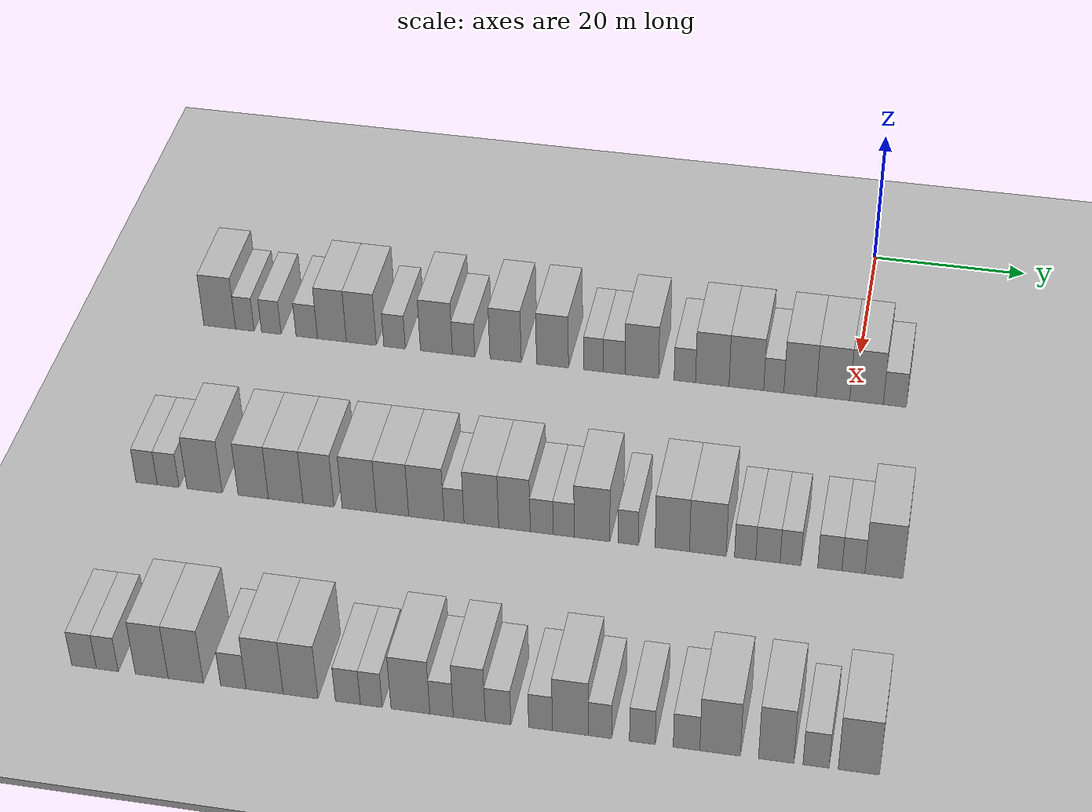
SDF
<sdf version="1.6">
 <world name="default">
  <include><name>ground_plane_1</name><uri>model://HANNAS_ground_plane</uri></include>
  <include>
   <name>ground_plane_2</name>
   <uri>model://HANNAS_ground_plane</uri>
   <pose>100 0 0  0 0 0</pose>
  </include>
  <model name="building_46">
   <static>1</static>
   <pose>25.0000 -82.9664 0 0.000000 0.000000 0.000000</pose>
   <link name="link">
    <pose>0 0 4.50 0 0 0</pose>
    <collision name="collision"><geometry><box><size>10.0000 4.2973 9.0000</size></box></geometry></collision>
    <visual name="visual">
     <cast_shadows>0</cast_shadows>
     <geometry><box><size>10.0000 4.2973 9.0000</size></box></geometry>
     <material>
      <script>
       <uri>model://HANNAS_wall/materials/scripts</uri>
       <uri>model://HANNAS_wall/materials/textures</uri>
       <name>vrc/HANNAS_wall</name>
      </script>
     </material>
    </visual>
   </link>
  </model>
  <model name="building_47">
   <static>1</static>
   <pose>25.0000 -79.5691 0 0.000000 0.000000 0.000000</pose>
   <link name="link">
    <pose>0 0 3.00 0 0 0</pose>
    <collision name="collision"><geometry><box><size>10.0000 2.4973 6.0000</size></box></geometry></collision>
    <visual name="visual">
     <cast_shadows>0</cast_shadows>
     <geometry><box><size>10.0000 2.4973 6.0000</size></box></geometry>
     <material>
      <script>
       <uri>model://HANNAS_wall/materials/scripts</uri>
       <uri>model://HANNAS_wall/materials/textures</uri>
       <name>vrc/HANNAS_wall</name>
      </script>
     </material>
    </visual>
   </link>
  </model>
  <model name="building_48">
   <static>1</static>
   <pose>25.0000 -75.9990 0 0.000000 0.000000 0.000000</pose>
   <link name="link">
    <pose>0 0 3.00 0 0 0</pose>
    <collision name="collision"><geometry><box><size>10.0000 2.6429 6.0000</size></box></geometry></collision>
    <visual name="visual">
     <cast_shadows>0</cast_shadows>
     <geometry><box><size>10.0000 2.6429 6.0000</size></box></geometry>
     <material>
      <script>
       <uri>model://HANNAS_wall/materials/scripts</uri>
       <uri>model://HANNAS_wall/materials/textures</uri>
       <name>vrc/HANNAS_wall</name>
      </script>
     </material>
    </visual>
   </link>
  </model>
  <model name="building_49">
   <static>1</static>
   <pose>25.0000 -71.2366 0 0.000000 0.000000 0.000000</pose>
   <link name="link">
    <pose>0 0 3.00 0 0 0</pose>
    <collision name="collision"><geometry><box><size>10.0000 2.8819 6.0000</size></box></geometry></collision>
    <visual name="visual">
     <cast_shadows>0</cast_shadows>
     <geometry><box><size>10.0000 2.8819 6.0000</size></box></geometry>
     <material>
      <script>
       <uri>model://HANNAS_wall/materials/scripts</uri>
       <uri>model://HANNAS_wall/materials/textures</uri>
       <name>vrc/HANNAS_wall</name>
      </script>
     </material>
    </visual>
   </link>
  </model>
  <model name="building_50">
   <static>1</static>
   <pose>25.0000 -67.8626 0 0.000000 0.000000 0.000000</pose>
   <link name="link">
    <pose>0 0 4.50 0 0 0</pose>
    <collision name="collision"><geometry><box><size>10.0000 3.8659 9.0000</size></box></geometry></collision>
    <visual name="visual">
     <cast_shadows>0</cast_shadows>
     <geometry><box><size>10.0000 3.8659 9.0000</size></box></geometry>
     <material>
      <script>
       <uri>model://HANNAS_wall/materials/scripts</uri>
       <uri>model://HANNAS_wall/materials/textures</uri>
       <name>vrc/HANNAS_wall</name>
      </script>
     </material>
    </visual>
   </link>
  </model>
  <model name="building_51">
   <static>1</static>
   <pose>25.0000 -63.9339 0 0.000000 0.000000 0.000000</pose>
   <link name="link">
    <pose>0 0 4.50 0 0 0</pose>
    <collision name="collision"><geometry><box><size>10.0000 3.9915 9.0000</size></box></geometry></collision>
    <visual name="visual">
     <cast_shadows>0</cast_shadows>
     <geometry><box><size>10.0000 3.9915 9.0000</size></box></geometry>
     <material>
      <script>
       <uri>model://HANNAS_wall/materials/scripts</uri>
       <uri>model://HANNAS_wall/materials/textures</uri>
       <name>vrc/HANNAS_wall</name>
      </script>
     </material>
    </visual>
   </link>
  </model>
  <model name="building_52">
   <static>1</static>
   <pose>25.0000 -59.5089 0 0.000000 0.000000 0.000000</pose>
   <link name="link">
    <pose>0 0 3.00 0 0 0</pose>
    <collision name="collision"><geometry><box><size>10.0000 2.8585 6.0000</size></box></geometry></collision>
    <visual name="visual">
     <cast_shadows>0</cast_shadows>
     <geometry><box><size>10.0000 2.8585 6.0000</size></box></geometry>
     <material>
      <script>
       <uri>model://HANNAS_wall/materials/scripts</uri>
       <uri>model://HANNAS_wall/materials/textures</uri>
       <name>vrc/HANNAS_wall</name>
      </script>
     </material>
    </visual>
   </link>
  </model>
  <model name="building_53">
   <static>1</static>
   <pose>25.0000 -53.9598 0 0.000000 0.000000 0.000000</pose>
   <link name="link">
    <pose>0 0 4.50 0 0 0</pose>
    <collision name="collision"><geometry><box><size>10.0000 4.2397 9.0000</size></box></geometry></collision>
    <visual name="visual">
     <cast_shadows>0</cast_shadows>
     <geometry><box><size>10.0000 4.2397 9.0000</size></box></geometry>
     <material>
      <script>
       <uri>model://HANNAS_wall/materials/scripts</uri>
       <uri>model://HANNAS_wall/materials/textures</uri>
       <name>vrc/HANNAS_wall</name>
      </script>
     </material>
    </visual>
   </link>
  </model>
  <model name="building_54">
   <static>1</static>
   <pose>25.0000 -50.3674 0 0.000000 0.000000 0.000000</pose>
   <link name="link">
    <pose>0 0 3.00 0 0 0</pose>
    <collision name="collision"><geometry><box><size>10.0000 2.9451 6.0000</size></box></geometry></collision>
    <visual name="visual">
     <cast_shadows>0</cast_shadows>
     <geometry><box><size>10.0000 2.9451 6.0000</size></box></geometry>
     <material>
      <script>
       <uri>model://HANNAS_wall/materials/scripts</uri>
       <uri>model://HANNAS_wall/materials/textures</uri>
       <name>vrc/HANNAS_wall</name>
      </script>
     </material>
    </visual>
   </link>
  </model>
  <model name="building_55">
   <static>1</static>
   <pose>25.0000 -44.8354 0 0.000000 0.000000 0.000000</pose>
   <link name="link">
    <pose>0 0 4.50 0 0 0</pose>
    <collision name="collision"><geometry><box><size>10.0000 4.1189 9.0000</size></box></geometry></collision>
    <visual name="visual">
     <cast_shadows>0</cast_shadows>
     <geometry><box><size>10.0000 4.1189 9.0000</size></box></geometry>
     <material>
      <script>
       <uri>model://HANNAS_wall/materials/scripts</uri>
       <uri>model://HANNAS_wall/materials/textures</uri>
       <name>vrc/HANNAS_wall</name>
      </script>
     </material>
    </visual>
   </link>
  </model>
  <model name="building_56">
   <static>1</static>
   <pose>25.0000 -38.6920 0 0.000000 0.000000 0.000000</pose>
   <link name="link">
    <pose>0 0 4.50 0 0 0</pose>
    <collision name="collision"><geometry><box><size>10.0000 4.1679 9.0000</size></box></geometry></collision>
    <visual name="visual">
     <cast_shadows>0</cast_shadows>
     <geometry><box><size>10.0000 4.1679 9.0000</size></box></geometry>
     <material>
      <script>
       <uri>model://HANNAS_wall/materials/scripts</uri>
       <uri>model://HANNAS_wall/materials/textures</uri>
       <name>vrc/HANNAS_wall</name>
      </script>
     </material>
    </visual>
   </link>
  </model>
  <model name="building_57">
   <static>1</static>
   <pose>25.0000 -33.3581 0 0.000000 0.000000 0.000000</pose>
   <link name="link">
    <pose>0 0 3.00 0 0 0</pose>
    <collision name="collision"><geometry><box><size>10.0000 2.4999 6.0000</size></box></geometry></collision>
    <visual name="visual">
     <cast_shadows>0</cast_shadows>
     <geometry><box><size>10.0000 2.4999 6.0000</size></box></geometry>
     <material>
      <script>
       <uri>model://HANNAS_wall/materials/scripts</uri>
       <uri>model://HANNAS_wall/materials/textures</uri>
       <name>vrc/HANNAS_wall</name>
      </script>
     </material>
    </visual>
   </link>
  </model>
  <model name="building_58">
   <static>1</static>
   <pose>25.0000 -30.6854 0 0.000000 0.000000 0.000000</pose>
   <link name="link">
    <pose>0 0 3.00 0 0 0</pose>
    <collision name="collision"><geometry><box><size>10.0000 2.8455 6.0000</size></box></geometry></collision>
    <visual name="visual">
     <cast_shadows>0</cast_shadows>
     <geometry><box><size>10.0000 2.8455 6.0000</size></box></geometry>
     <material>
      <script>
       <uri>model://HANNAS_wall/materials/scripts</uri>
       <uri>model://HANNAS_wall/materials/textures</uri>
       <name>vrc/HANNAS_wall</name>
      </script>
     </material>
    </visual>
   </link>
  </model>
  <model name="building_59">
   <static>1</static>
   <pose>25.0000 -27.0819 0 0.000000 0.000000 0.000000</pose>
   <link name="link">
    <pose>0 0 4.50 0 0 0</pose>
    <collision name="collision"><geometry><box><size>10.0000 4.3614 9.0000</size></box></geometry></collision>
    <visual name="visual">
     <cast_shadows>0</cast_shadows>
     <geometry><box><size>10.0000 4.3614 9.0000</size></box></geometry>
     <material>
      <script>
       <uri>model://HANNAS_wall/materials/scripts</uri>
       <uri>model://HANNAS_wall/materials/textures</uri>
       <name>vrc/HANNAS_wall</name>
      </script>
     </material>
    </visual>
   </link>
  </model>
  <model name="building_60">
   <static>1</static>
   <pose>25.0000 -21.5233 0 0.000000 0.000000 0.000000</pose>
   <link name="link">
    <pose>0 0 3.00 0 0 0</pose>
    <collision name="collision"><geometry><box><size>10.0000 2.7559 6.0000</size></box></geometry></collision>
    <visual name="visual">
     <cast_shadows>0</cast_shadows>
     <geometry><box><size>10.0000 2.7559 6.0000</size></box></geometry>
     <material>
      <script>
       <uri>model://HANNAS_wall/materials/scripts</uri>
       <uri>model://HANNAS_wall/materials/textures</uri>
       <name>vrc/HANNAS_wall</name>
      </script>
     </material>
    </visual>
   </link>
  </model>
  <model name="building_61">
   <static>1</static>
   <pose>25.0000 -17.9922 0 0.000000 0.000000 0.000000</pose>
   <link name="link">
    <pose>0 0 4.50 0 0 0</pose>
    <collision name="collision"><geometry><box><size>10.0000 4.3062 9.0000</size></box></geometry></collision>
    <visual name="visual">
     <cast_shadows>0</cast_shadows>
     <geometry><box><size>10.0000 4.3062 9.0000</size></box></geometry>
     <material>
      <script>
       <uri>model://HANNAS_wall/materials/scripts</uri>
       <uri>model://HANNAS_wall/materials/textures</uri>
       <name>vrc/HANNAS_wall</name>
      </script>
     </material>
    </visual>
   </link>
  </model>
  <model name="building_62">
   <static>1</static>
   <pose>25.0000 -13.6157 0 0.000000 0.000000 0.000000</pose>
   <link name="link">
    <pose>0 0 4.50 0 0 0</pose>
    <collision name="collision"><geometry><box><size>10.0000 4.4468 9.0000</size></box></geometry></collision>
    <visual name="visual">
     <cast_shadows>0</cast_shadows>
     <geometry><box><size>10.0000 4.4468 9.0000</size></box></geometry>
     <material>
      <script>
       <uri>model://HANNAS_wall/materials/scripts</uri>
       <uri>model://HANNAS_wall/materials/textures</uri>
       <name>vrc/HANNAS_wall</name>
      </script>
     </material>
    </visual>
   </link>
  </model>
  <model name="building_63">
   <static>1</static>
   <pose>25.0000 -10.1081 0 0.000000 0.000000 0.000000</pose>
   <link name="link">
    <pose>0 0 3.00 0 0 0</pose>
    <collision name="collision"><geometry><box><size>10.0000 2.5683 6.0000</size></box></geometry></collision>
    <visual name="visual">
     <cast_shadows>0</cast_shadows>
     <geometry><box><size>10.0000 2.5683 6.0000</size></box></geometry>
     <material>
      <script>
       <uri>model://HANNAS_wall/materials/scripts</uri>
       <uri>model://HANNAS_wall/materials/textures</uri>
       <name>vrc/HANNAS_wall</name>
      </script>
     </material>
    </visual>
   </link>
  </model>
  <model name="building_64">
   <static>1</static>
   <pose>25.0000 -6.7647 0 0.000000 0.000000 0.000000</pose>
   <link name="link">
    <pose>0 0 4.50 0 0 0</pose>
    <collision name="collision"><geometry><box><size>10.0000 4.1185 9.0000</size></box></geometry></collision>
    <visual name="visual">
     <cast_shadows>0</cast_shadows>
     <geometry><box><size>10.0000 4.1185 9.0000</size></box></geometry>
     <material>
      <script>
       <uri>model://HANNAS_wall/materials/scripts</uri>
       <uri>model://HANNAS_wall/materials/textures</uri>
       <name>vrc/HANNAS_wall</name>
      </script>
     </material>
    </visual>
   </link>
  </model>
  <model name="building_65">
   <static>1</static>
   <pose>25.0000 -2.5718 0 0.000000 0.000000 0.000000</pose>
   <link name="link">
    <pose>0 0 4.50 0 0 0</pose>
    <collision name="collision"><geometry><box><size>10.0000 4.2673 9.0000</size></box></geometry></collision>
    <visual name="visual">
     <cast_shadows>0</cast_shadows>
     <geometry><box><size>10.0000 4.2673 9.0000</size></box></geometry>
     <material>
      <script>
       <uri>model://HANNAS_wall/materials/scripts</uri>
       <uri>model://HANNAS_wall/materials/textures</uri>
       <name>vrc/HANNAS_wall</name>
      </script>
     </material>
    </visual>
   </link>
  </model>
  <model name="building_66">
   <static>1</static>
   <pose>25.0000 1.6884 0 0.000000 0.000000 0.000000</pose>
   <link name="link">
    <pose>0 0 4.50 0 0 0</pose>
    <collision name="collision"><geometry><box><size>10.0000 4.2529 9.0000</size></box></geometry></collision>
    <visual name="visual">
     <cast_shadows>0</cast_shadows>
     <geometry><box><size>10.0000 4.2529 9.0000</size></box></geometry>
     <material>
      <script>
       <uri>model://HANNAS_wall/materials/scripts</uri>
       <uri>model://HANNAS_wall/materials/textures</uri>
       <name>vrc/HANNAS_wall</name>
      </script>
     </material>
    </visual>
   </link>
  </model>
  <model name="building_67">
   <static>1</static>
   <pose>25.0000 5.2637 0 0.000000 0.000000 0.000000</pose>
   <link name="link">
    <pose>0 0 3.00 0 0 0</pose>
    <collision name="collision"><geometry><box><size>10.0000 2.8977 6.0000</size></box></geometry></collision>
    <visual name="visual">
     <cast_shadows>0</cast_shadows>
     <geometry><box><size>10.0000 2.8977 6.0000</size></box></geometry>
     <material>
      <script>
       <uri>model://HANNAS_wall/materials/scripts</uri>
       <uri>model://HANNAS_wall/materials/textures</uri>
       <name>vrc/HANNAS_wall</name>
      </script>
     </material>
    </visual>
   </link>
  </model>
  <model name="building_185">
   <static>1</static>
   <pose>55.0000 -83.3040 0 0.000000 0.000000 0.000000</pose>
   <link name="link">
    <pose>0 0 3.00 0 0 0</pose>
    <collision name="collision"><geometry><box><size>10.0000 2.6878 6.0000</size></box></geometry></collision>
    <visual name="visual">
     <cast_shadows>0</cast_shadows>
     <geometry><box><size>10.0000 2.6878 6.0000</size></box></geometry>
     <material>
      <script>
       <uri>model://HANNAS_wall/materials/scripts</uri>
       <uri>model://HANNAS_wall/materials/textures</uri>
       <name>vrc/HANNAS_wall</name>
      </script>
     </material>
    </visual>
   </link>
  </model>
  <model name="building_186">
   <static>1</static>
   <pose>55.0000 -80.5756 0 0.000000 0.000000 0.000000</pose>
   <link name="link">
    <pose>0 0 3.00 0 0 0</pose>
    <collision name="collision"><geometry><box><size>10.0000 2.7692 6.0000</size></box></geometry></collision>
    <visual name="visual">
     <cast_shadows>0</cast_shadows>
     <geometry><box><size>10.0000 2.7692 6.0000</size></box></geometry>
     <material>
      <script>
       <uri>model://HANNAS_wall/materials/scripts</uri>
       <uri>model://HANNAS_wall/materials/textures</uri>
       <name>vrc/HANNAS_wall</name>
      </script>
     </material>
    </visual>
   </link>
  </model>
  <model name="building_187">
   <static>1</static>
   <pose>55.0000 -75.9728 0 0.000000 0.000000 0.000000</pose>
   <link name="link">
    <pose>0 0 4.50 0 0 0</pose>
    <collision name="collision"><geometry><box><size>10.0000 4.4364 9.0000</size></box></geometry></collision>
    <visual name="visual">
     <cast_shadows>0</cast_shadows>
     <geometry><box><size>10.0000 4.4364 9.0000</size></box></geometry>
     <material>
      <script>
       <uri>model://HANNAS_wall/materials/scripts</uri>
       <uri>model://HANNAS_wall/materials/textures</uri>
       <name>vrc/HANNAS_wall</name>
      </script>
     </material>
    </visual>
   </link>
  </model>
  <model name="building_188">
   <static>1</static>
   <pose>55.0000 -69.8494 0 0.000000 0.000000 0.000000</pose>
   <link name="link">
    <pose>0 0 4.50 0 0 0</pose>
    <collision name="collision"><geometry><box><size>10.0000 3.8103 9.0000</size></box></geometry></collision>
    <visual name="visual">
     <cast_shadows>0</cast_shadows>
     <geometry><box><size>10.0000 3.8103 9.0000</size></box></geometry>
     <material>
      <script>
       <uri>model://HANNAS_wall/materials/scripts</uri>
       <uri>model://HANNAS_wall/materials/textures</uri>
       <name>vrc/HANNAS_wall</name>
      </script>
     </material>
    </visual>
   </link>
  </model>
  <model name="building_189">
   <static>1</static>
   <pose>55.0000 -65.7828 0 0.000000 0.000000 0.000000</pose>
   <link name="link">
    <pose>0 0 4.50 0 0 0</pose>
    <collision name="collision"><geometry><box><size>10.0000 4.3230 9.0000</size></box></geometry></collision>
    <visual name="visual">
     <cast_shadows>0</cast_shadows>
     <geometry><box><size>10.0000 4.3230 9.0000</size></box></geometry>
     <material>
      <script>
       <uri>model://HANNAS_wall/materials/scripts</uri>
       <uri>model://HANNAS_wall/materials/textures</uri>
       <name>vrc/HANNAS_wall</name>
      </script>
     </material>
    </visual>
   </link>
  </model>
  <model name="building_190">
   <static>1</static>
   <pose>55.0000 -61.6930 0 0.000000 0.000000 0.000000</pose>
   <link name="link">
    <pose>0 0 4.50 0 0 0</pose>
    <collision name="collision"><geometry><box><size>10.0000 3.8566 9.0000</size></box></geometry></collision>
    <visual name="visual">
     <cast_shadows>0</cast_shadows>
     <geometry><box><size>10.0000 3.8566 9.0000</size></box></geometry>
     <material>
      <script>
       <uri>model://HANNAS_wall/materials/scripts</uri>
       <uri>model://HANNAS_wall/materials/textures</uri>
       <name>vrc/HANNAS_wall</name>
      </script>
     </material>
    </visual>
   </link>
  </model>
  <model name="building_191">
   <static>1</static>
   <pose>55.0000 -56.6436 0 0.000000 0.000000 0.000000</pose>
   <link name="link">
    <pose>0 0 4.50 0 0 0</pose>
    <collision name="collision"><geometry><box><size>10.0000 4.2421 9.0000</size></box></geometry></collision>
    <visual name="visual">
     <cast_shadows>0</cast_shadows>
     <geometry><box><size>10.0000 4.2421 9.0000</size></box></geometry>
     <material>
      <script>
       <uri>model://HANNAS_wall/materials/scripts</uri>
       <uri>model://HANNAS_wall/materials/textures</uri>
       <name>vrc/HANNAS_wall</name>
      </script>
     </material>
    </visual>
   </link>
  </model>
  <model name="building_192">
   <static>1</static>
   <pose>55.0000 -52.5233 0 0.000000 0.000000 0.000000</pose>
   <link name="link">
    <pose>0 0 4.50 0 0 0</pose>
    <collision name="collision"><geometry><box><size>10.0000 3.9985 9.0000</size></box></geometry></collision>
    <visual name="visual">
     <cast_shadows>0</cast_shadows>
     <geometry><box><size>10.0000 3.9985 9.0000</size></box></geometry>
     <material>
      <script>
       <uri>model://HANNAS_wall/materials/scripts</uri>
       <uri>model://HANNAS_wall/materials/textures</uri>
       <name>vrc/HANNAS_wall</name>
      </script>
     </material>
    </visual>
   </link>
  </model>
  <model name="building_193">
   <static>1</static>
   <pose>55.0000 -48.3417 0 0.000000 0.000000 0.000000</pose>
   <link name="link">
    <pose>0 0 4.50 0 0 0</pose>
    <collision name="collision"><geometry><box><size>10.0000 4.3648 9.0000</size></box></geometry></collision>
    <visual name="visual">
     <cast_shadows>0</cast_shadows>
     <geometry><box><size>10.0000 4.3648 9.0000</size></box></geometry>
     <material>
      <script>
       <uri>model://HANNAS_wall/materials/scripts</uri>
       <uri>model://HANNAS_wall/materials/textures</uri>
       <name>vrc/HANNAS_wall</name>
      </script>
     </material>
    </visual>
   </link>
  </model>
  <model name="building_194">
   <static>1</static>
   <pose>55.0000 -44.9358 0 0.000000 0.000000 0.000000</pose>
   <link name="link">
    <pose>0 0 3.00 0 0 0</pose>
    <collision name="collision"><geometry><box><size>10.0000 2.4470 6.0000</size></box></geometry></collision>
    <visual name="visual">
     <cast_shadows>0</cast_shadows>
     <geometry><box><size>10.0000 2.4470 6.0000</size></box></geometry>
     <material>
      <script>
       <uri>model://HANNAS_wall/materials/scripts</uri>
       <uri>model://HANNAS_wall/materials/textures</uri>
       <name>vrc/HANNAS_wall</name>
      </script>
     </material>
    </visual>
   </link>
  </model>
  <model name="building_195">
   <static>1</static>
   <pose>55.0000 -41.5872 0 0.000000 0.000000 0.000000</pose>
   <link name="link">
    <pose>0 0 4.50 0 0 0</pose>
    <collision name="collision"><geometry><box><size>10.0000 4.2503 9.0000</size></box></geometry></collision>
    <visual name="visual">
     <cast_shadows>0</cast_shadows>
     <geometry><box><size>10.0000 4.2503 9.0000</size></box></geometry>
     <material>
      <script>
       <uri>model://HANNAS_wall/materials/scripts</uri>
       <uri>model://HANNAS_wall/materials/textures</uri>
       <name>vrc/HANNAS_wall</name>
      </script>
     </material>
    </visual>
   </link>
  </model>
  <model name="building_196">
   <static>1</static>
   <pose>55.0000 -37.5357 0 0.000000 0.000000 0.000000</pose>
   <link name="link">
    <pose>0 0 4.50 0 0 0</pose>
    <collision name="collision"><geometry><box><size>10.0000 3.8528 9.0000</size></box></geometry></collision>
    <visual name="visual">
     <cast_shadows>0</cast_shadows>
     <geometry><box><size>10.0000 3.8528 9.0000</size></box></geometry>
     <material>
      <script>
       <uri>model://HANNAS_wall/materials/scripts</uri>
       <uri>model://HANNAS_wall/materials/textures</uri>
       <name>vrc/HANNAS_wall</name>
      </script>
     </material>
    </visual>
   </link>
  </model>
  <model name="building_197">
   <static>1</static>
   <pose>55.0000 -34.2203 0 0.000000 0.000000 0.000000</pose>
   <link name="link">
    <pose>0 0 3.00 0 0 0</pose>
    <collision name="collision"><geometry><box><size>10.0000 2.7779 6.0000</size></box></geometry></collision>
    <visual name="visual">
     <cast_shadows>0</cast_shadows>
     <geometry><box><size>10.0000 2.7779 6.0000</size></box></geometry>
     <material>
      <script>
       <uri>model://HANNAS_wall/materials/scripts</uri>
       <uri>model://HANNAS_wall/materials/textures</uri>
       <name>vrc/HANNAS_wall</name>
      </script>
     </material>
    </visual>
   </link>
  </model>
  <model name="building_198">
   <static>1</static>
   <pose>55.0000 -31.5542 0 0.000000 0.000000 0.000000</pose>
   <link name="link">
    <pose>0 0 3.00 0 0 0</pose>
    <collision name="collision"><geometry><box><size>10.0000 2.5544 6.0000</size></box></geometry></collision>
    <visual name="visual">
     <cast_shadows>0</cast_shadows>
     <geometry><box><size>10.0000 2.5544 6.0000</size></box></geometry>
     <material>
      <script>
       <uri>model://HANNAS_wall/materials/scripts</uri>
       <uri>model://HANNAS_wall/materials/textures</uri>
       <name>vrc/HANNAS_wall</name>
      </script>
     </material>
    </visual>
   </link>
  </model>
  <model name="building_199">
   <static>1</static>
   <pose>55.0000 -28.1221 0 0.000000 0.000000 0.000000</pose>
   <link name="link">
    <pose>0 0 4.50 0 0 0</pose>
    <collision name="collision"><geometry><box><size>10.0000 4.3098 9.0000</size></box></geometry></collision>
    <visual name="visual">
     <cast_shadows>0</cast_shadows>
     <geometry><box><size>10.0000 4.3098 9.0000</size></box></geometry>
     <material>
      <script>
       <uri>model://HANNAS_wall/materials/scripts</uri>
       <uri>model://HANNAS_wall/materials/textures</uri>
       <name>vrc/HANNAS_wall</name>
      </script>
     </material>
    </visual>
   </link>
  </model>
  <model name="building_200">
   <static>1</static>
   <pose>55.0000 -23.7427 0 0.000000 0.000000 0.000000</pose>
   <link name="link">
    <pose>0 0 3.00 0 0 0</pose>
    <collision name="collision"><geometry><box><size>10.0000 2.4491 6.0000</size></box></geometry></collision>
    <visual name="visual">
     <cast_shadows>0</cast_shadows>
     <geometry><box><size>10.0000 2.4491 6.0000</size></box></geometry>
     <material>
      <script>
       <uri>model://HANNAS_wall/materials/scripts</uri>
       <uri>model://HANNAS_wall/materials/textures</uri>
       <name>vrc/HANNAS_wall</name>
      </script>
     </material>
    </visual>
   </link>
  </model>
  <model name="building_201">
   <static>1</static>
   <pose>55.0000 -18.4586 0 0.000000 0.000000 0.000000</pose>
   <link name="link">
    <pose>0 0 4.50 0 0 0</pose>
    <collision name="collision"><geometry><box><size>10.0000 4.1191 9.0000</size></box></geometry></collision>
    <visual name="visual">
     <cast_shadows>0</cast_shadows>
     <geometry><box><size>10.0000 4.1191 9.0000</size></box></geometry>
     <material>
      <script>
       <uri>model://HANNAS_wall/materials/scripts</uri>
       <uri>model://HANNAS_wall/materials/textures</uri>
       <name>vrc/HANNAS_wall</name>
      </script>
     </material>
    </visual>
   </link>
  </model>
  <model name="building_202">
   <static>1</static>
   <pose>55.0000 -14.2052 0 0.000000 0.000000 0.000000</pose>
   <link name="link">
    <pose>0 0 4.50 0 0 0</pose>
    <collision name="collision"><geometry><box><size>10.0000 4.3877 9.0000</size></box></geometry></collision>
    <visual name="visual">
     <cast_shadows>0</cast_shadows>
     <geometry><box><size>10.0000 4.3877 9.0000</size></box></geometry>
     <material>
      <script>
       <uri>model://HANNAS_wall/materials/scripts</uri>
       <uri>model://HANNAS_wall/materials/textures</uri>
       <name>vrc/HANNAS_wall</name>
      </script>
     </material>
    </visual>
   </link>
  </model>
  <model name="building_203">
   <static>1</static>
   <pose>55.0000 -9.7453 0 0.000000 0.000000 0.000000</pose>
   <link name="link">
    <pose>0 0 3.00 0 0 0</pose>
    <collision name="collision"><geometry><box><size>10.0000 2.5322 6.0000</size></box></geometry></collision>
    <visual name="visual">
     <cast_shadows>0</cast_shadows>
     <geometry><box><size>10.0000 2.5322 6.0000</size></box></geometry>
     <material>
      <script>
       <uri>model://HANNAS_wall/materials/scripts</uri>
       <uri>model://HANNAS_wall/materials/textures</uri>
       <name>vrc/HANNAS_wall</name>
      </script>
     </material>
    </visual>
   </link>
  </model>
  <model name="building_204">
   <static>1</static>
   <pose>55.0000 -7.0385 0 0.000000 0.000000 0.000000</pose>
   <link name="link">
    <pose>0 0 3.00 0 0 0</pose>
    <collision name="collision"><geometry><box><size>10.0000 2.8815 6.0000</size></box></geometry></collision>
    <visual name="visual">
     <cast_shadows>0</cast_shadows>
     <geometry><box><size>10.0000 2.8815 6.0000</size></box></geometry>
     <material>
      <script>
       <uri>model://HANNAS_wall/materials/scripts</uri>
       <uri>model://HANNAS_wall/materials/textures</uri>
       <name>vrc/HANNAS_wall</name>
      </script>
     </material>
    </visual>
   </link>
  </model>
  <model name="building_205">
   <static>1</static>
   <pose>55.0000 -4.3658 0 0.000000 0.000000 0.000000</pose>
   <link name="link">
    <pose>0 0 3.00 0 0 0</pose>
    <collision name="collision"><geometry><box><size>10.0000 2.4639 6.0000</size></box></geometry></collision>
    <visual name="visual">
     <cast_shadows>0</cast_shadows>
     <geometry><box><size>10.0000 2.4639 6.0000</size></box></geometry>
     <material>
      <script>
       <uri>model://HANNAS_wall/materials/scripts</uri>
       <uri>model://HANNAS_wall/materials/textures</uri>
       <name>vrc/HANNAS_wall</name>
      </script>
     </material>
    </visual>
   </link>
  </model>
  <model name="building_206">
   <static>1</static>
   <pose>55.0000 0.2914 0 0.000000 0.000000 0.000000</pose>
   <link name="link">
    <pose>0 0 3.00 0 0 0</pose>
    <collision name="collision"><geometry><box><size>10.0000 2.8505 6.0000</size></box></geometry></collision>
    <visual name="visual">
     <cast_shadows>0</cast_shadows>
     <geometry><box><size>10.0000 2.8505 6.0000</size></box></geometry>
     <material>
      <script>
       <uri>model://HANNAS_wall/materials/scripts</uri>
       <uri>model://HANNAS_wall/materials/textures</uri>
       <name>vrc/HANNAS_wall</name>
      </script>
     </material>
    </visual>
   </link>
  </model>
  <model name="building_207">
   <static>1</static>
   <pose>55.0000 3.0710 0 0.000000 0.000000 0.000000</pose>
   <link name="link">
    <pose>0 0 3.00 0 0 0</pose>
    <collision name="collision"><geometry><box><size>10.0000 2.7087 6.0000</size></box></geometry></collision>
    <visual name="visual">
     <cast_shadows>0</cast_shadows>
     <geometry><box><size>10.0000 2.7087 6.0000</size></box></geometry>
     <material>
      <script>
       <uri>model://HANNAS_wall/materials/scripts</uri>
       <uri>model://HANNAS_wall/materials/textures</uri>
       <name>vrc/HANNAS_wall</name>
      </script>
     </material>
    </visual>
   </link>
  </model>
  <model name="building_208">
   <static>1</static>
   <pose>55.0000 6.6575 0 0.000000 0.000000 0.000000</pose>
   <link name="link">
    <pose>0 0 4.50 0 0 0</pose>
    <collision name="collision"><geometry><box><size>10.0000 4.4642 9.0000</size></box></geometry></collision>
    <visual name="visual">
     <cast_shadows>0</cast_shadows>
     <geometry><box><size>10.0000 4.4642 9.0000</size></box></geometry>
     <material>
      <script>
       <uri>model://HANNAS_wall/materials/scripts</uri>
       <uri>model://HANNAS_wall/materials/textures</uri>
       <name>vrc/HANNAS_wall</name>
      </script>
     </material>
    </visual>
   </link>
  </model>
  <model name="building_327">
   <static>1</static>
   <pose>85.0000 -81.0526 0 0.000000 0.000000 0.000000</pose>
   <link name="link">
    <pose>0 0 3.00 0 0 0</pose>
    <collision name="collision"><geometry><box><size>10.0000 2.9073 6.0000</size></box></geometry></collision>
    <visual name="visual">
     <cast_shadows>0</cast_shadows>
     <geometry><box><size>10.0000 2.9073 6.0000</size></box></geometry>
     <material>
      <script>
       <uri>model://HANNAS_wall/materials/scripts</uri>
       <uri>model://HANNAS_wall/materials/textures</uri>
       <name>vrc/HANNAS_wall</name>
      </script>
     </material>
    </visual>
   </link>
  </model>
  <model name="building_328">
   <static>1</static>
   <pose>85.0000 -78.3082 0 0.000000 0.000000 0.000000</pose>
   <link name="link">
    <pose>0 0 3.00 0 0 0</pose>
    <collision name="collision"><geometry><box><size>10.0000 2.5814 6.0000</size></box></geometry></collision>
    <visual name="visual">
     <cast_shadows>0</cast_shadows>
     <geometry><box><size>10.0000 2.5814 6.0000</size></box></geometry>
     <material>
      <script>
       <uri>model://HANNAS_wall/materials/scripts</uri>
       <uri>model://HANNAS_wall/materials/textures</uri>
       <name>vrc/HANNAS_wall</name>
      </script>
     </material>
    </visual>
   </link>
  </model>
  <model name="building_329">
   <static>1</static>
   <pose>85.0000 -73.0939 0 0.000000 0.000000 0.000000</pose>
   <link name="link">
    <pose>0 0 4.50 0 0 0</pose>
    <collision name="collision"><geometry><box><size>10.0000 3.8472 9.0000</size></box></geometry></collision>
    <visual name="visual">
     <cast_shadows>0</cast_shadows>
     <geometry><box><size>10.0000 3.8472 9.0000</size></box></geometry>
     <material>
      <script>
       <uri>model://HANNAS_wall/materials/scripts</uri>
       <uri>model://HANNAS_wall/materials/textures</uri>
       <name>vrc/HANNAS_wall</name>
      </script>
     </material>
    </visual>
   </link>
  </model>
  <model name="building_330">
   <static>1</static>
   <pose>85.0000 -69.1142 0 0.000000 0.000000 0.000000</pose>
   <link name="link">
    <pose>0 0 4.50 0 0 0</pose>
    <collision name="collision"><geometry><box><size>10.0000 4.1123 9.0000</size></box></geometry></collision>
    <visual name="visual">
     <cast_shadows>0</cast_shadows>
     <geometry><box><size>10.0000 4.1123 9.0000</size></box></geometry>
     <material>
      <script>
       <uri>model://HANNAS_wall/materials/scripts</uri>
       <uri>model://HANNAS_wall/materials/textures</uri>
       <name>vrc/HANNAS_wall</name>
      </script>
     </material>
    </visual>
   </link>
  </model>
  <model name="building_331">
   <static>1</static>
   <pose>85.0000 -63.5772 0 0.000000 0.000000 0.000000</pose>
   <link name="link">
    <pose>0 0 3.00 0 0 0</pose>
    <collision name="collision"><geometry><box><size>10.0000 2.9618 6.0000</size></box></geometry></collision>
    <visual name="visual">
     <cast_shadows>0</cast_shadows>
     <geometry><box><size>10.0000 2.9618 6.0000</size></box></geometry>
     <material>
      <script>
       <uri>model://HANNAS_wall/materials/scripts</uri>
       <uri>model://HANNAS_wall/materials/textures</uri>
       <name>vrc/HANNAS_wall</name>
      </script>
     </material>
    </visual>
   </link>
  </model>
  <model name="building_332">
   <static>1</static>
   <pose>85.0000 -59.9471 0 0.000000 0.000000 0.000000</pose>
   <link name="link">
    <pose>0 0 4.50 0 0 0</pose>
    <collision name="collision"><geometry><box><size>10.0000 4.2984 9.0000</size></box></geometry></collision>
    <visual name="visual">
     <cast_shadows>0</cast_shadows>
     <geometry><box><size>10.0000 4.2984 9.0000</size></box></geometry>
     <material>
      <script>
       <uri>model://HANNAS_wall/materials/scripts</uri>
       <uri>model://HANNAS_wall/materials/textures</uri>
       <name>vrc/HANNAS_wall</name>
      </script>
     </material>
    </visual>
   </link>
  </model>
  <model name="building_333">
   <static>1</static>
   <pose>85.0000 -55.7968 0 0.000000 0.000000 0.000000</pose>
   <link name="link">
    <pose>0 0 4.50 0 0 0</pose>
    <collision name="collision"><geometry><box><size>10.0000 4.0022 9.0000</size></box></geometry></collision>
    <visual name="visual">
     <cast_shadows>0</cast_shadows>
     <geometry><box><size>10.0000 4.0022 9.0000</size></box></geometry>
     <material>
      <script>
       <uri>model://HANNAS_wall/materials/scripts</uri>
       <uri>model://HANNAS_wall/materials/textures</uri>
       <name>vrc/HANNAS_wall</name>
      </script>
     </material>
    </visual>
   </link>
  </model>
  <model name="building_334">
   <static>1</static>
   <pose>85.0000 -50.3568 0 0.000000 0.000000 0.000000</pose>
   <link name="link">
    <pose>0 0 3.00 0 0 0</pose>
    <collision name="collision"><geometry><box><size>10.0000 2.8777 6.0000</size></box></geometry></collision>
    <visual name="visual">
     <cast_shadows>0</cast_shadows>
     <geometry><box><size>10.0000 2.8777 6.0000</size></box></geometry>
     <material>
      <script>
       <uri>model://HANNAS_wall/materials/scripts</uri>
       <uri>model://HANNAS_wall/materials/textures</uri>
       <name>vrc/HANNAS_wall</name>
      </script>
     </material>
    </visual>
   </link>
  </model>
  <model name="building_335">
   <static>1</static>
   <pose>85.0000 -47.6689 0 0.000000 0.000000 0.000000</pose>
   <link name="link">
    <pose>0 0 3.00 0 0 0</pose>
    <collision name="collision"><geometry><box><size>10.0000 2.4982 6.0000</size></box></geometry></collision>
    <visual name="visual">
     <cast_shadows>0</cast_shadows>
     <geometry><box><size>10.0000 2.4982 6.0000</size></box></geometry>
     <material>
      <script>
       <uri>model://HANNAS_wall/materials/scripts</uri>
       <uri>model://HANNAS_wall/materials/textures</uri>
       <name>vrc/HANNAS_wall</name>
      </script>
     </material>
    </visual>
   </link>
  </model>
  <model name="building_336">
   <static>1</static>
   <pose>85.0000 -43.2066 0 0.000000 0.000000 0.000000</pose>
   <link name="link">
    <pose>0 0 4.50 0 0 0</pose>
    <collision name="collision"><geometry><box><size>10.0000 4.4262 9.0000</size></box></geometry></collision>
    <visual name="visual">
     <cast_shadows>0</cast_shadows>
     <geometry><box><size>10.0000 4.4262 9.0000</size></box></geometry>
     <material>
      <script>
       <uri>model://HANNAS_wall/materials/scripts</uri>
       <uri>model://HANNAS_wall/materials/textures</uri>
       <name>vrc/HANNAS_wall</name>
      </script>
     </material>
    </visual>
   </link>
  </model>
  <model name="building_337">
   <static>1</static>
   <pose>85.0000 -39.6590 0 0.000000 0.000000 0.000000</pose>
   <link name="link">
    <pose>0 0 3.00 0 0 0</pose>
    <collision name="collision"><geometry><box><size>10.0000 2.6690 6.0000</size></box></geometry></collision>
    <visual name="visual">
     <cast_shadows>0</cast_shadows>
     <geometry><box><size>10.0000 2.6690 6.0000</size></box></geometry>
     <material>
      <script>
       <uri>model://HANNAS_wall/materials/scripts</uri>
       <uri>model://HANNAS_wall/materials/textures</uri>
       <name>vrc/HANNAS_wall</name>
      </script>
     </material>
    </visual>
   </link>
  </model>
  <model name="building_338">
   <static>1</static>
   <pose>85.0000 -36.5156 0 0.000000 0.000000 0.000000</pose>
   <link name="link">
    <pose>0 0 4.50 0 0 0</pose>
    <collision name="collision"><geometry><box><size>10.0000 3.6180 9.0000</size></box></geometry></collision>
    <visual name="visual">
     <cast_shadows>0</cast_shadows>
     <geometry><box><size>10.0000 3.6180 9.0000</size></box></geometry>
     <material>
      <script>
       <uri>model://HANNAS_wall/materials/scripts</uri>
       <uri>model://HANNAS_wall/materials/textures</uri>
       <name>vrc/HANNAS_wall</name>
      </script>
     </material>
    </visual>
   </link>
  </model>
  <model name="building_339">
   <static>1</static>
   <pose>85.0000 -33.2600 0 0.000000 0.000000 0.000000</pose>
   <link name="link">
    <pose>0 0 3.00 0 0 0</pose>
    <collision name="collision"><geometry><box><size>10.0000 2.8932 6.0000</size></box></geometry></collision>
    <visual name="visual">
     <cast_shadows>0</cast_shadows>
     <geometry><box><size>10.0000 2.8932 6.0000</size></box></geometry>
     <material>
      <script>
       <uri>model://HANNAS_wall/materials/scripts</uri>
       <uri>model://HANNAS_wall/materials/textures</uri>
       <name>vrc/HANNAS_wall</name>
      </script>
     </material>
    </visual>
   </link>
  </model>
  <model name="building_340">
   <static>1</static>
   <pose>85.0000 -28.4738 0 0.000000 0.000000 0.000000</pose>
   <link name="link">
    <pose>0 0 3.00 0 0 0</pose>
    <collision name="collision"><geometry><box><size>10.0000 2.6793 6.0000</size></box></geometry></collision>
    <visual name="visual">
     <cast_shadows>0</cast_shadows>
     <geometry><box><size>10.0000 2.6793 6.0000</size></box></geometry>
     <material>
      <script>
       <uri>model://HANNAS_wall/materials/scripts</uri>
       <uri>model://HANNAS_wall/materials/textures</uri>
       <name>vrc/HANNAS_wall</name>
      </script>
     </material>
    </visual>
   </link>
  </model>
  <model name="building_341">
   <static>1</static>
   <pose>85.0000 -25.1205 0 0.000000 0.000000 0.000000</pose>
   <link name="link">
    <pose>0 0 4.50 0 0 0</pose>
    <collision name="collision"><geometry><box><size>10.0000 4.0272 9.0000</size></box></geometry></collision>
    <visual name="visual">
     <cast_shadows>0</cast_shadows>
     <geometry><box><size>10.0000 4.0272 9.0000</size></box></geometry>
     <material>
      <script>
       <uri>model://HANNAS_wall/materials/scripts</uri>
       <uri>model://HANNAS_wall/materials/textures</uri>
       <name>vrc/HANNAS_wall</name>
      </script>
     </material>
    </visual>
   </link>
  </model>
  <model name="building_342">
   <static>1</static>
   <pose>85.0000 -21.8184 0 0.000000 0.000000 0.000000</pose>
   <link name="link">
    <pose>0 0 3.00 0 0 0</pose>
    <collision name="collision"><geometry><box><size>10.0000 2.5772 6.0000</size></box></geometry></collision>
    <visual name="visual">
     <cast_shadows>0</cast_shadows>
     <geometry><box><size>10.0000 2.5772 6.0000</size></box></geometry>
     <material>
      <script>
       <uri>model://HANNAS_wall/materials/scripts</uri>
       <uri>model://HANNAS_wall/materials/textures</uri>
       <name>vrc/HANNAS_wall</name>
      </script>
     </material>
    </visual>
   </link>
  </model>
  <model name="building_343">
   <static>1</static>
   <pose>85.0000 -17.0968 0 0.000000 0.000000 0.000000</pose>
   <link name="link">
    <pose>0 0 3.00 0 0 0</pose>
    <collision name="collision"><geometry><box><size>10.0000 2.8660 6.0000</size></box></geometry></collision>
    <visual name="visual">
     <cast_shadows>0</cast_shadows>
     <geometry><box><size>10.0000 2.8660 6.0000</size></box></geometry>
     <material>
      <script>
       <uri>model://HANNAS_wall/materials/scripts</uri>
       <uri>model://HANNAS_wall/materials/textures</uri>
       <name>vrc/HANNAS_wall</name>
      </script>
     </material>
    </visual>
   </link>
  </model>
  <model name="building_344">
   <static>1</static>
   <pose>85.0000 -12.1962 0 0.000000 0.000000 0.000000</pose>
   <link name="link">
    <pose>0 0 3.00 0 0 0</pose>
    <collision name="collision"><geometry><box><size>10.0000 2.9352 6.0000</size></box></geometry></collision>
    <visual name="visual">
     <cast_shadows>0</cast_shadows>
     <geometry><box><size>10.0000 2.9352 6.0000</size></box></geometry>
     <material>
      <script>
       <uri>model://HANNAS_wall/materials/scripts</uri>
       <uri>model://HANNAS_wall/materials/textures</uri>
       <name>vrc/HANNAS_wall</name>
      </script>
     </material>
    </visual>
   </link>
  </model>
  <model name="building_345">
   <static>1</static>
   <pose>85.0000 -8.4919 0 0.000000 0.000000 0.000000</pose>
   <link name="link">
    <pose>0 0 4.50 0 0 0</pose>
    <collision name="collision"><geometry><box><size>10.0000 4.4734 9.0000</size></box></geometry></collision>
    <visual name="visual">
     <cast_shadows>0</cast_shadows>
     <geometry><box><size>10.0000 4.4734 9.0000</size></box></geometry>
     <material>
      <script>
       <uri>model://HANNAS_wall/materials/scripts</uri>
       <uri>model://HANNAS_wall/materials/textures</uri>
       <name>vrc/HANNAS_wall</name>
      </script>
     </material>
    </visual>
   </link>
  </model>
  <model name="building_346">
   <static>1</static>
   <pose>85.0000 -2.3184 0 0.000000 0.000000 0.000000</pose>
   <link name="link">
    <pose>0 0 4.50 0 0 0</pose>
    <collision name="collision"><geometry><box><size>10.0000 3.8736 9.0000</size></box></geometry></collision>
    <visual name="visual">
     <cast_shadows>0</cast_shadows>
     <geometry><box><size>10.0000 3.8736 9.0000</size></box></geometry>
     <material>
      <script>
       <uri>model://HANNAS_wall/materials/scripts</uri>
       <uri>model://HANNAS_wall/materials/textures</uri>
       <name>vrc/HANNAS_wall</name>
      </script>
     </material>
    </visual>
   </link>
  </model>
  <model name="building_347">
   <static>1</static>
   <pose>85.0000 2.0423 0 0.000000 0.000000 0.000000</pose>
   <link name="link">
    <pose>0 0 3.00 0 0 0</pose>
    <collision name="collision"><geometry><box><size>10.0000 2.8479 6.0000</size></box></geometry></collision>
    <visual name="visual">
     <cast_shadows>0</cast_shadows>
     <geometry><box><size>10.0000 2.8479 6.0000</size></box></geometry>
     <material>
      <script>
       <uri>model://HANNAS_wall/materials/scripts</uri>
       <uri>model://HANNAS_wall/materials/textures</uri>
       <name>vrc/HANNAS_wall</name>
      </script>
     </material>
    </visual>
   </link>
  </model>
  <model name="building_348">
   <static>1</static>
   <pose>85.0000 6.7071 0 0.000000 0.000000 0.000000</pose>
   <link name="link">
    <pose>0 0 4.50 0 0 0</pose>
    <collision name="collision"><geometry><box><size>10.0000 4.4817 9.0000</size></box></geometry></collision>
    <visual name="visual">
     <cast_shadows>0</cast_shadows>
     <geometry><box><size>10.0000 4.4817 9.0000</size></box></geometry>
     <material>
      <script>
       <uri>model://HANNAS_wall/materials/scripts</uri>
       <uri>model://HANNAS_wall/materials/textures</uri>
       <name>vrc/HANNAS_wall</name>
      </script>
     </material>
    </visual>
   </link>
  </model>
 </world>
</sdf>
